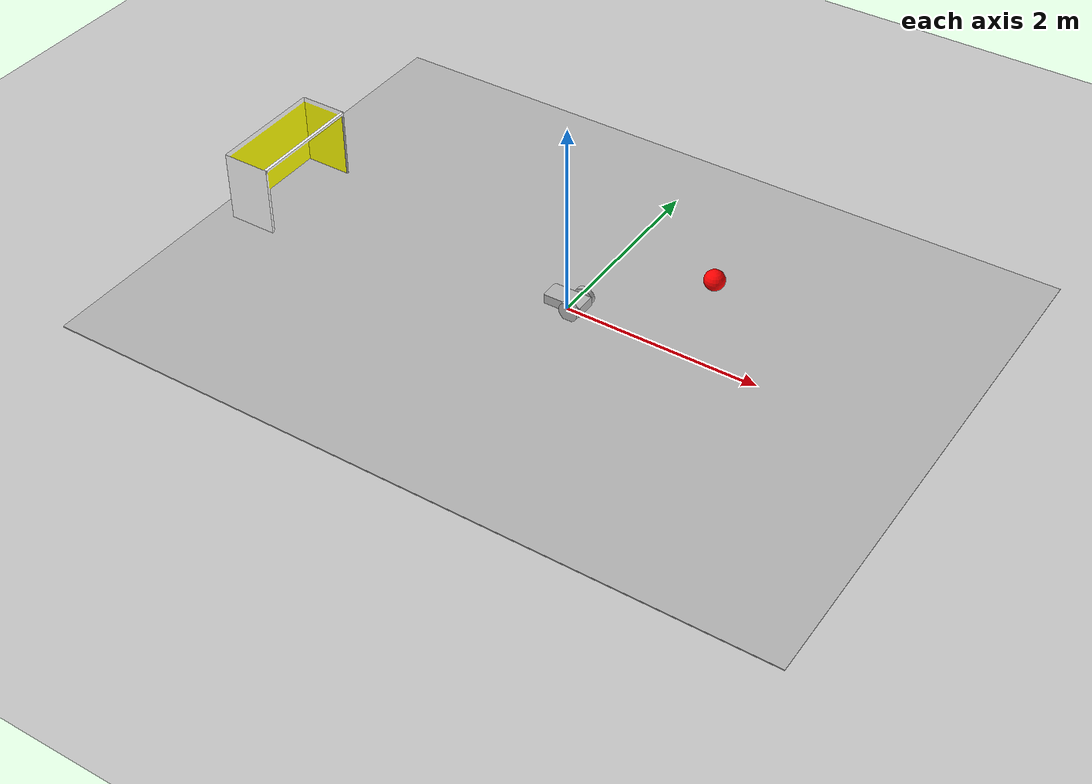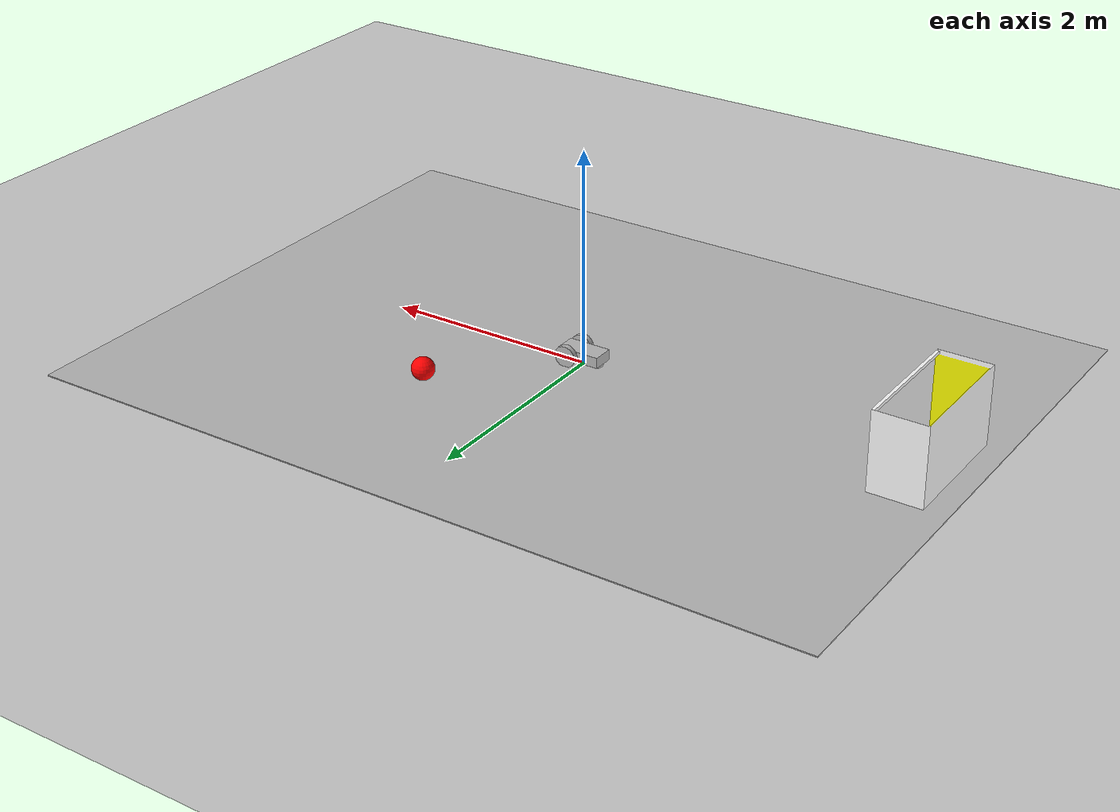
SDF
<sdf version="1.4">
 <world name="hiworld">
  <include><uri>model://ground_plane</uri></include>
  <include><uri>model://sun</uri></include>
  <include><uri>model://soccer</uri><pose>1 1 .1 0 0 0</pose><name>soccer</name></include>
  <include><uri>model://yellow_goal</uri><pose>-3.35 -0.48  0 0 0 0</pose><name>YellowGoal</name></include>
  <include><uri>model://fira_ground</uri></include>
  <include><uri>model://my_robot</uri><name>Robot_Blue_1</name></include>
  <light name="light_point1" type="point"><pose>-3 1 1 0 0 0</pose></light>
  <light name="light_point10" type="point"><pose>3 -1 1 0 0 0</pose></light>
  <plugin filename="libFIRA_world_plugin.so" name="FIRA_world_plugin"/>
 </world>
</sdf>

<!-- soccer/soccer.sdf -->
<sdf version="1.4">
   <model name="soccer">
   <pose>1 1 0.2 0 0 0</pose>
        <link name ='link'>
        <pose>0 0 0 0 0 0</pose>
<!-- inertia based on solid sphere 2/5 mr^2 -->
	<inertial>
           <pose>0 0 0 0 0 0</pose>
           <mass>0.42</mass>
           <inertia>
             <ixx>0.00195</ixx>
             <ixy>0.00195</ixy>
             <ixz>0.00195</ixz>
             <iyy>0</iyy>
             <iyz>0</iyz>
             <izz>0</izz>
           </inertia>
        </inertial>
        <collision name ='collision'>
           <geometry>
              <sphere><radius>0.1055</radius></sphere>
           </geometry>

	 <surface>
            <friction>
              <ode>
                <mu>1.00000</mu>
                <mu2>1.00000</mu2>
                <fdir1>0.000000 0.000000 0.000000</fdir1>
                <slip1>1.000000</slip1>
                <slip2>1.000000</slip2>
              </ode>
            </friction>
          </surface>
        </collision>
        <visual name ='visual'>
           <geometry>
               <sphere><radius>0.1055</radius></sphere>
           </geometry>
	   <material>
   		 <ambient>1 0 0 1</ambient>
    		 <diffuse>1 0 0 1</diffuse>
   		 <specular>0.1 0.1 0.1 1</specular>
   		 <emissive>0 0 0 0</emissive>
 	   </material>
        </visual>
	<sensor name="my_contact" type="contact">
	<plugin name="my_plugin" filename="libcontact.so"/>
          <contact>
            <collision>collision</collision>
          </contact>
        </sensor>
        </link>
	 <plugin filename="libsoccer_plugin.so" name="soccer_plugin" />
     </model>

</sdf>

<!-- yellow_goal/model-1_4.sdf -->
<sdf version="1.4">
  <model name="YellowGoal">
    <pose>0 0 0  0 0 0</pose>
    <static>true</static>
    <link name="link">
      <collision name="collision">
        <geometry>
          <mesh>
            <uri>model://yellow_goal/meshes/YellowGoal.DAE</uri>
          </mesh>
        </geometry>
      </collision>
      <visual name="visual">
        <geometry>
          <mesh>
            <uri>model://yellow_goal/meshes/YellowGoal.DAE</uri>
          </mesh>
        </geometry>
      </visual>
    </link>
  </model>
</sdf>

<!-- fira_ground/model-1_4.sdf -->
<sdf version="1.4">
  <model name="FIRA_Ground">
    <pose>0 0 0  0 0 0</pose>
     <static>true</static>
    <link name="link">
      <collision name="collision">
        <geometry>
          <mesh>
            <uri>model://fira_ground/meshes/FIRAGround.DAE</uri>
          </mesh>
        </geometry>
      </collision>
      <visual name="visual">
        <geometry>
          <mesh>
            <uri>model://fira_ground/meshes/FIRAGround.DAE</uri>
          </mesh>
        </geometry>
      </visual>
    </link>
  </model>
</sdf>

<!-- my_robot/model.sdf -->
<sdf version='1.4'>
  <model name="my_robot">
<static>false</static>
    <link name='chassis'>
      <pose>0 0 .1 0 0 0</pose>

      <inertial>
        <pose>0 0 0 0 0 0</pose>
        <mass>20.09425</mass>
        <inertia>
          <ixx>0.2833</ixx>
          <ixy>0</ixy>
          <ixz>0</ixz>
          <iyy>0.3333</iyy>
          <iyz>0</iyz>
          <izz>0.0833</izz>
        </inertia>
      </inertial>

      <collision name='collision'>
        <geometry>
          <box>
            <size>.4 .2 .1</size>
          </box>
        </geometry>
      </collision>

      <visual name='visual'>
        <geometry>
          <box>
            <size>.4 .2 .1</size>
          </box>
        </geometry>
      </visual>

      <collision name='caster_collision'>
        <pose>-0.15 0 -0.05 0 0 0</pose>
        <geometry>
          <sphere>
          <radius>.05</radius>
        </sphere>
      </geometry>

      <surface>
        <friction>
          <ode>
            <mu>0</mu>
            <mu2>0</mu2>
            <slip1>1.0</slip1>
            <slip2>1.0</slip2>
          </ode>
        </friction>
      </surface>
    </collision>

    <visual name='caster_visual'>
      <pose>-0.15 0 -0.05 0 0 0</pose>
      <geometry>
        <sphere>
          <radius>.05</radius>
        </sphere>
      </geometry>
    </visual>
  </link>
  <link name="left_wheel">
    <pose>0.1 0.13 0.1 0 1.5707 1.5707</pose>

    <collision name="collision">
      <geometry>
        <cylinder>
          <radius>.1</radius>
          <length>.05</length>
        </cylinder>
      </geometry>
    </collision>
    <visual name="visual">
      <geometry>
        <cylinder>
          <radius>.1</radius>
          <length>.05</length>
        </cylinder>
      </geometry>
    </visual>
  </link>

  <link name="right_wheel">
    <pose>0.1 -0.13 0.1 0 1.5707 1.5707</pose>

    <collision name="collision">
      <geometry>
        <cylinder>
          <radius>.1</radius>
          <length>.05</length>
        </cylinder>
      </geometry>
    </collision>
    <visual name="visual">
      <geometry>
        <cylinder>
          <radius>.1</radius>
          <length>.05</length>
        </cylinder>
      </geometry>
    </visual>
  </link>
  <joint type="revolute" name="left_wheel_hinge">
    <pose>0 0 -0.03 0 0 0</pose>
    <child>left_wheel</child>
    <parent>chassis</parent>
    <axis>
      <xyz>0 1 0</xyz>
    </axis>
  </joint>

  <joint type="revolute" name="right_wheel_hinge">
    <pose>0 0 0.03 0 0 0</pose>
    <child>right_wheel</child>
    <parent>chassis</parent>
    <axis>
      <xyz>0 1 0</xyz>
    </axis>
  </joint>
   <plugin filename="libFIRA_robot_pub_plugin.so" name="FIRA_robot_pub_plugin">
      <left_wheel_hinge>left_wheel_hinge</left_wheel_hinge>
      <right_wheel_hinge>right_wheel_hinge</right_wheel_hinge>
    </plugin>
  </model>
</sdf>
